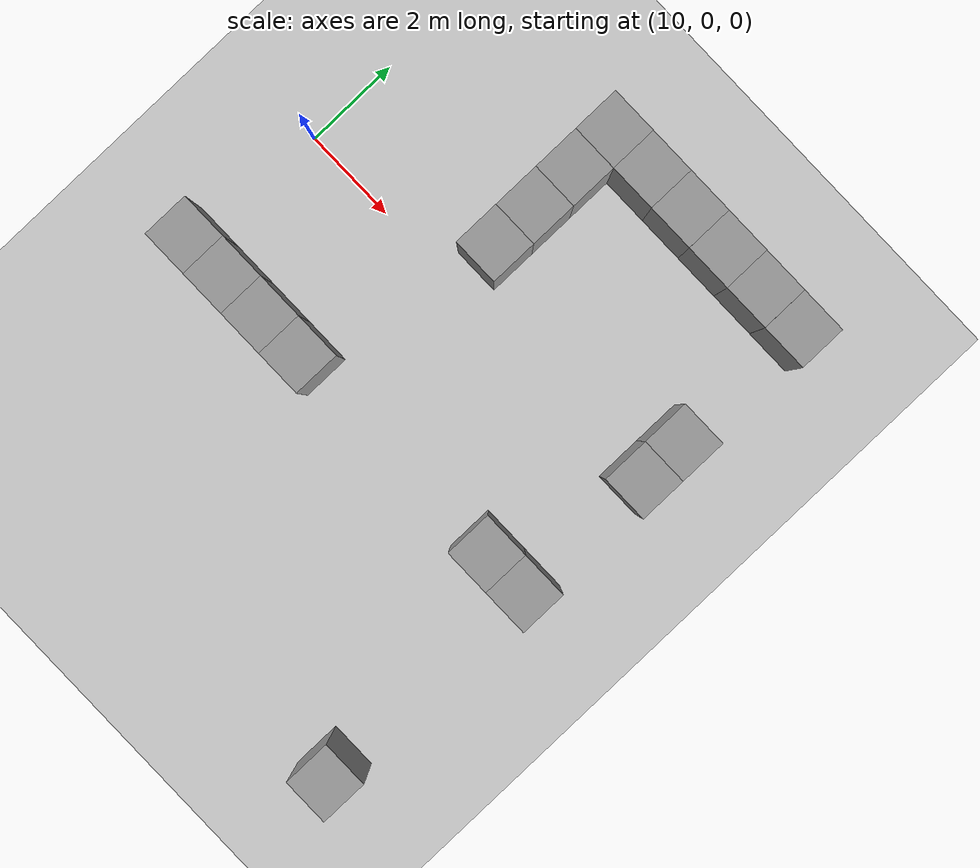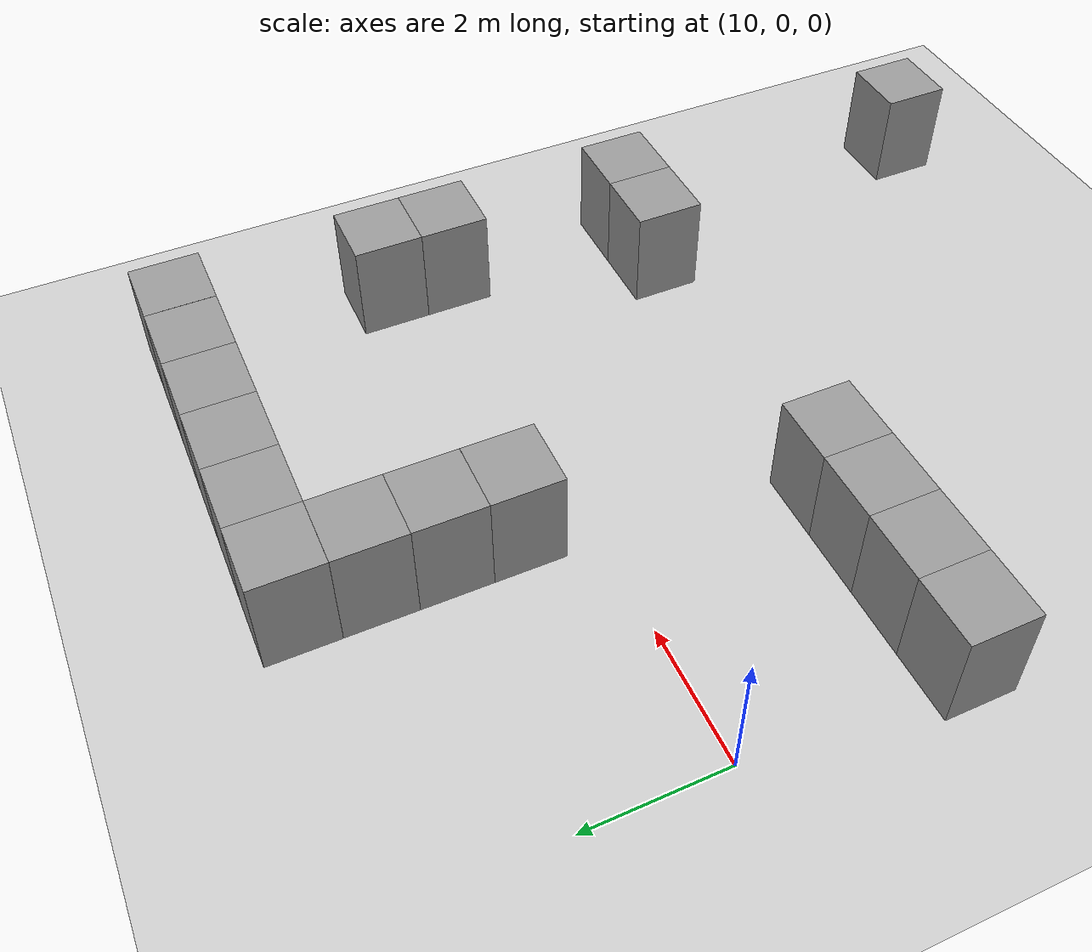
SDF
<sdf version="1.4">
 <world name="default">
  <model name="ground_plane">
   <static>1</static>
   <link name="link">
    <collision name="collision">
     <geometry><plane><normal>0 0 1</normal><size>100 100</size></plane></geometry>
     <surface><friction><ode><mu>100</mu><mu2>50</mu2></ode></friction></surface>
    </collision>
    <visual name="visual">
     <cast_shadows>0</cast_shadows>
     <geometry><plane><normal>0 0 1</normal><size>100 100</size></plane></geometry>
     <material>
      <script><uri>file://media/materials/scripts/gazebo.material</uri><name>Gazebo/Grey</name></script>
     </material>
    </visual>
    <velocity_decay><linear>0</linear><angular>0</angular></velocity_decay>
   </link>
  </model>
  <model name="unit_box_35">
   <pose>10.0001 -2.99995 0.5 0 0 -1.5e-05</pose>
   <static>true</static>
   <link name="link">
    <inertial>
     <mass>1</mass>
     <inertia><ixx>1</ixx><ixy>0</ixy><ixz>0</ixz><iyy>1</iyy><iyz>0</iyz><izz>1</izz></inertia>
    </inertial>
    <collision name="collision"><geometry><box><size>1 1 2</size></box></geometry></collision>
    <visual name="visual">
     <geometry><box><size>1 1 2</size></box></geometry>
     <material>
      <script><uri>file://media/materials/scripts/gazebo.material</uri><name>Gazebo/Grey</name></script>
     </material>
    </visual>
    <velocity_decay><linear>0</linear><angular>0</angular></velocity_decay>
   </link>
   <static>0</static>
  </model>
  <model name="unit_box_36">
   <pose>11.0001 -2.99997 0.5 0 0 -1.5e-05</pose>
   <static>true</static>
   <link name="link">
    <inertial>
     <mass>1</mass>
     <inertia><ixx>1</ixx><ixy>0</ixy><ixz>0</ixz><iyy>1</iyy><iyz>0</iyz><izz>1</izz></inertia>
    </inertial>
    <collision name="collision"><geometry><box><size>1 1 2</size></box></geometry></collision>
    <visual name="visual">
     <geometry><box><size>1 1 2</size></box></geometry>
     <material>
      <script><uri>file://media/materials/scripts/gazebo.material</uri><name>Gazebo/Grey</name></script>
     </material>
    </visual>
    <velocity_decay><linear>0</linear><angular>0</angular></velocity_decay>
   </link>
   <static>0</static>
  </model>
  <model name="unit_box_37">
   <pose>12.0001 -2.99998 0.5 0 -0 -1.4e-05</pose>
   <static>true</static>
   <link name="link">
    <inertial>
     <mass>1</mass>
     <inertia><ixx>1</ixx><ixy>0</ixy><ixz>0</ixz><iyy>1</iyy><iyz>0</iyz><izz>1</izz></inertia>
    </inertial>
    <collision name="collision"><geometry><box><size>1 1 2</size></box></geometry></collision>
    <visual name="visual">
     <geometry><box><size>1 1 2</size></box></geometry>
     <material>
      <script><uri>file://media/materials/scripts/gazebo.material</uri><name>Gazebo/Grey</name></script>
     </material>
    </visual>
    <velocity_decay><linear>0</linear><angular>0</angular></velocity_decay>
   </link>
   <static>0</static>
  </model>
  <model name="unit_box_129">
   <pose>13.0001 -3 0.5 0 0 -1.3e-05</pose>
   <static>true</static>
   <link name="link">
    <inertial>
     <mass>1</mass>
     <inertia><ixx>1</ixx><ixy>0</ixy><ixz>0</ixz><iyy>1</iyy><iyz>0</iyz><izz>1</izz></inertia>
    </inertial>
    <collision name="collision"><geometry><box><size>1 1 2</size></box></geometry></collision>
    <visual name="visual">
     <geometry><box><size>1 1 2</size></box></geometry>
     <material>
      <script><uri>file://media/materials/scripts/gazebo.material</uri><name>Gazebo/Grey</name></script>
     </material>
    </visual>
    <velocity_decay><linear>0</linear><angular>0</angular></velocity_decay>
   </link>
   <static>0</static>
  </model>
  <model name="unit_box_173">
   <pose>13.9973 3.99985 0.5 0 -0 0.000731</pose>
   <static>true</static>
   <link name="link">
    <inertial>
     <mass>1</mass>
     <inertia><ixx>1</ixx><ixy>0</ixy><ixz>0</ixz><iyy>1</iyy><iyz>0</iyz><izz>1</izz></inertia>
    </inertial>
    <collision name="collision"><geometry><box><size>1 1 2</size></box></geometry></collision>
    <visual name="visual">
     <geometry><box><size>1 1 2</size></box></geometry>
     <material>
      <script><uri>file://media/materials/scripts/gazebo.material</uri><name>Gazebo/Grey</name></script>
     </material>
    </visual>
    <velocity_decay><linear>0</linear><angular>0</angular></velocity_decay>
   </link>
   <static>0</static>
  </model>
  <model name="unit_box_174">
   <pose>13.9996 2.99959 0.5 0 -0 0.000224</pose>
   <static>true</static>
   <link name="link">
    <inertial>
     <mass>1</mass>
     <inertia><ixx>1</ixx><ixy>0</ixy><ixz>0</ixz><iyy>1</iyy><iyz>0</iyz><izz>1</izz></inertia>
    </inertial>
    <collision name="collision"><geometry><box><size>1 1 2</size></box></geometry></collision>
    <visual name="visual">
     <geometry><box><size>1 1 2</size></box></geometry>
     <material>
      <script><uri>file://media/materials/scripts/gazebo.material</uri><name>Gazebo/Grey</name></script>
     </material>
    </visual>
    <velocity_decay><linear>0</linear><angular>0</angular></velocity_decay>
   </link>
   <static>0</static>
  </model>
  <model name="unit_box_175">
   <pose>13.9999 1.99957 0.5 0 -0 0.000199</pose>
   <static>true</static>
   <link name="link">
    <inertial>
     <mass>1</mass>
     <inertia><ixx>1</ixx><ixy>0</ixy><ixz>0</ixz><iyy>1</iyy><iyz>0</iyz><izz>1</izz></inertia>
    </inertial>
    <collision name="collision"><geometry><box><size>1 1 2</size></box></geometry></collision>
    <visual name="visual">
     <geometry><box><size>1 1 2</size></box></geometry>
     <material>
      <script><uri>file://media/materials/scripts/gazebo.material</uri><name>Gazebo/Grey</name></script>
     </material>
    </visual>
    <velocity_decay><linear>0</linear><angular>0</angular></velocity_decay>
   </link>
   <static>0</static>
  </model>
  <model name="unit_box_176">
   <pose>14 0.999522 0.5 0 -0 9.7e-05</pose>
   <static>true</static>
   <link name="link">
    <inertial>
     <mass>1</mass>
     <inertia><ixx>1</ixx><ixy>0</ixy><ixz>0</ixz><iyy>1</iyy><iyz>0</iyz><izz>1</izz></inertia>
    </inertial>
    <collision name="collision"><geometry><box><size>1 1 2</size></box></geometry></collision>
    <visual name="visual">
     <geometry><box><size>1 1 2</size></box></geometry>
     <material>
      <script><uri>file://media/materials/scripts/gazebo.material</uri><name>Gazebo/Grey</name></script>
     </material>
    </visual>
    <velocity_decay><linear>0</linear><angular>0</angular></velocity_decay>
   </link>
   <static>0</static>
  </model>
  <model name="unit_box_177">
   <pose>14.9974 4.00019 0.5 0 -0 0.000926</pose>
   <static>true</static>
   <link name="link">
    <inertial>
     <mass>1</mass>
     <inertia><ixx>1</ixx><ixy>0</ixy><ixz>0</ixz><iyy>1</iyy><iyz>0</iyz><izz>1</izz></inertia>
    </inertial>
    <collision name="collision"><geometry><box><size>1 1 2</size></box></geometry></collision>
    <visual name="visual">
     <geometry><box><size>1 1 2</size></box></geometry>
     <material>
      <script><uri>file://media/materials/scripts/gazebo.material</uri><name>Gazebo/Grey</name></script>
     </material>
    </visual>
    <velocity_decay><linear>0</linear><angular>0</angular></velocity_decay>
   </link>
   <static>0</static>
  </model>
  <model name="unit_box_178">
   <pose>15.9974 4.00015 0.5 0 -0 0.001009</pose>
   <static>true</static>
   <link name="link">
    <inertial>
     <mass>1</mass>
     <inertia><ixx>1</ixx><ixy>0</ixy><ixz>0</ixz><iyy>1</iyy><iyz>0</iyz><izz>1</izz></inertia>
    </inertial>
    <collision name="collision"><geometry><box><size>1 1 2</size></box></geometry></collision>
    <visual name="visual">
     <geometry><box><size>1 1 2</size></box></geometry>
     <material>
      <script><uri>file://media/materials/scripts/gazebo.material</uri><name>Gazebo/Grey</name></script>
     </material>
    </visual>
    <velocity_decay><linear>0</linear><angular>0</angular></velocity_decay>
   </link>
   <static>0</static>
  </model>
  <model name="unit_box_179">
   <pose>16.9975 3.99993 0.5 0 -0 0.001188</pose>
   <static>true</static>
   <link name="link">
    <inertial>
     <mass>1</mass>
     <inertia><ixx>1</ixx><ixy>0</ixy><ixz>0</ixz><iyy>1</iyy><iyz>0</iyz><izz>1</izz></inertia>
    </inertial>
    <collision name="collision"><geometry><box><size>1 1 2</size></box></geometry></collision>
    <visual name="visual">
     <geometry><box><size>1 1 2</size></box></geometry>
     <material>
      <script><uri>file://media/materials/scripts/gazebo.material</uri><name>Gazebo/Grey</name></script>
     </material>
    </visual>
    <velocity_decay><linear>0</linear><angular>0</angular></velocity_decay>
   </link>
   <static>0</static>
  </model>
  <model name="unit_box_180">
   <pose>17.9977 4.00059 0.5 0 -0 0.001689</pose>
   <static>true</static>
   <link name="link">
    <inertial>
     <mass>1</mass>
     <inertia><ixx>1</ixx><ixy>0</ixy><ixz>0</ixz><iyy>1</iyy><iyz>0</iyz><izz>1</izz></inertia>
    </inertial>
    <collision name="collision"><geometry><box><size>1 1 2</size></box></geometry></collision>
    <visual name="visual">
     <geometry><box><size>1 1 2</size></box></geometry>
     <material>
      <script><uri>file://media/materials/scripts/gazebo.material</uri><name>Gazebo/Grey</name></script>
     </material>
    </visual>
    <velocity_decay><linear>0</linear><angular>0</angular></velocity_decay>
   </link>
   <static>0</static>
  </model>
  <model name="unit_box_181">
   <pose>18.9984 4.00065 0.5 0 -0 0.002125</pose>
   <static>true</static>
   <link name="link">
    <inertial>
     <mass>1</mass>
     <inertia><ixx>1</ixx><ixy>0</ixy><ixz>0</ixz><iyy>1</iyy><iyz>0</iyz><izz>1</izz></inertia>
    </inertial>
    <collision name="collision"><geometry><box><size>1 1 2</size></box></geometry></collision>
    <visual name="visual">
     <geometry><box><size>1 1 2</size></box></geometry>
     <material>
      <script><uri>file://media/materials/scripts/gazebo.material</uri><name>Gazebo/Grey</name></script>
     </material>
    </visual>
    <velocity_decay><linear>0</linear><angular>0</angular></velocity_decay>
   </link>
   <static>0</static>
  </model>
  <model name="unit_box_202">
   <pose>19 0.999639 0.5 0 -0 0.00011</pose>
   <static>true</static>
   <link name="link">
    <inertial>
     <mass>1</mass>
     <inertia><ixx>1</ixx><ixy>0</ixy><ixz>0</ixz><iyy>1</iyy><iyz>0</iyz><izz>1</izz></inertia>
    </inertial>
    <collision name="collision"><geometry><box><size>1 1 2</size></box></geometry></collision>
    <visual name="visual">
     <geometry><box><size>1 1 2</size></box></geometry>
     <material>
      <script><uri>file://media/materials/scripts/gazebo.material</uri><name>Gazebo/Grey</name></script>
     </material>
    </visual>
    <velocity_decay><linear>0</linear><angular>0</angular></velocity_decay>
   </link>
   <static>0</static>
  </model>
  <model name="unit_box_203">
   <pose>19 -0.000365 0.5 0 -0 0.000106</pose>
   <static>true</static>
   <link name="link">
    <inertial>
     <mass>1</mass>
     <inertia><ixx>1</ixx><ixy>0</ixy><ixz>0</ixz><iyy>1</iyy><iyz>0</iyz><izz>1</izz></inertia>
    </inertial>
    <collision name="collision"><geometry><box><size>1 1 2</size></box></geometry></collision>
    <visual name="visual">
     <geometry><box><size>1 1 2</size></box></geometry>
     <material>
      <script><uri>file://media/materials/scripts/gazebo.material</uri><name>Gazebo/Grey</name></script>
     </material>
    </visual>
    <velocity_decay><linear>0</linear><angular>0</angular></velocity_decay>
   </link>
   <static>0</static>
  </model>
  <model name="unit_box_209">
   <pose>18 -3 0.5 0 0 -2e-06</pose>
   <static>true</static>
   <link name="link">
    <inertial>
     <mass>1</mass>
     <inertia><ixx>1</ixx><ixy>0</ixy><ixz>0</ixz><iyy>1</iyy><iyz>0</iyz><izz>1</izz></inertia>
    </inertial>
    <collision name="collision"><geometry><box><size>1 1 2</size></box></geometry></collision>
    <visual name="visual">
     <geometry><box><size>1 1 2</size></box></geometry>
     <material>
      <script><uri>file://media/materials/scripts/gazebo.material</uri><name>Gazebo/Grey</name></script>
     </material>
    </visual>
    <velocity_decay><linear>0</linear><angular>0</angular></velocity_decay>
   </link>
   <static>0</static>
  </model>
  <model name="unit_box_210">
   <pose>19 -3 0.5 -0 -0 -2e-06</pose>
   <static>true</static>
   <link name="link">
    <inertial>
     <mass>1</mass>
     <inertia><ixx>1</ixx><ixy>0</ixy><ixz>0</ixz><iyy>1</iyy><iyz>0</iyz><izz>1</izz></inertia>
    </inertial>
    <collision name="collision"><geometry><box><size>1 1 2</size></box></geometry></collision>
    <visual name="visual">
     <geometry><box><size>1 1 2</size></box></geometry>
     <material>
      <script><uri>file://media/materials/scripts/gazebo.material</uri><name>Gazebo/Grey</name></script>
     </material>
    </visual>
    <velocity_decay><linear>0</linear><angular>0</angular></velocity_decay>
   </link>
   <static>0</static>
  </model>
  <model name="unit_box_221">
   <pose>19 -7.99999 0.5 0 -1e-06 -4e-06</pose>
   <static>true</static>
   <link name="link">
    <inertial>
     <mass>1</mass>
     <inertia><ixx>1</ixx><ixy>0</ixy><ixz>0</ixz><iyy>1</iyy><iyz>0</iyz><izz>1</izz></inertia>
    </inertial>
    <collision name="collision"><geometry><box><size>1 1 2</size></box></geometry></collision>
    <visual name="visual">
     <geometry><box><size>1 1 2</size></box></geometry>
     <material>
      <script><uri>file://media/materials/scripts/gazebo.material</uri><name>Gazebo/Grey</name></script>
     </material>
    </visual>
    <velocity_decay><linear>0</linear><angular>0</angular></velocity_decay>
   </link>
   <static>0</static>
  </model>
 </world>
</sdf>
